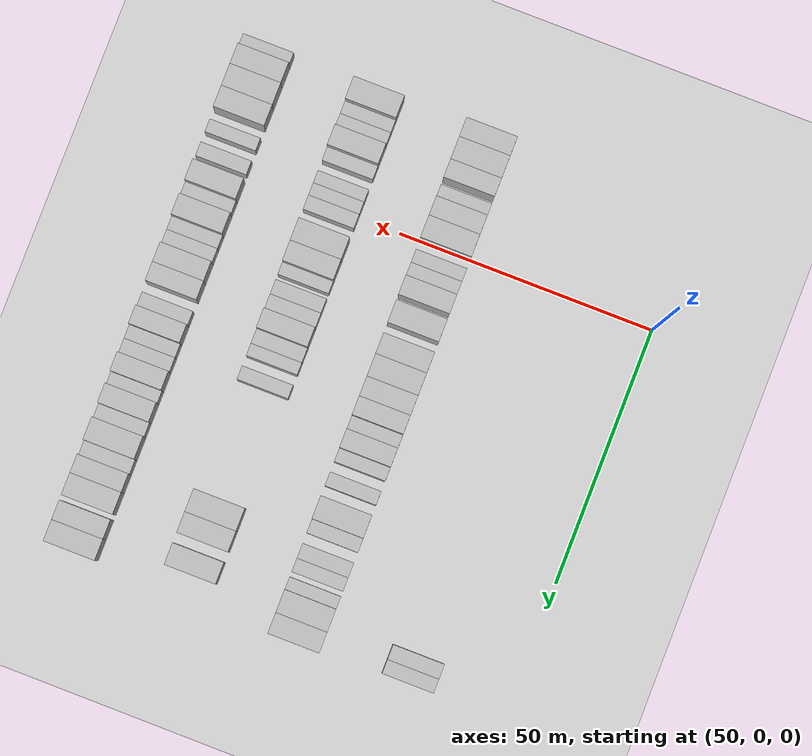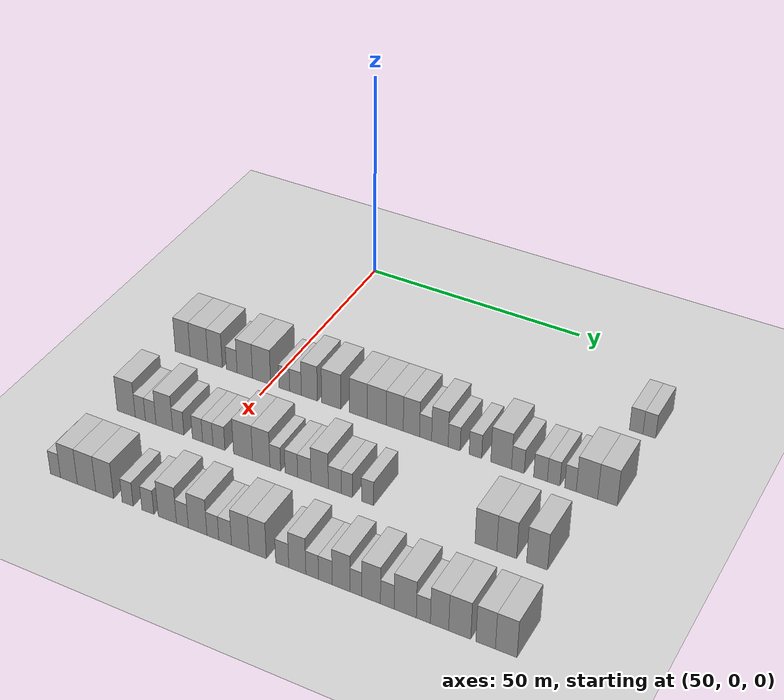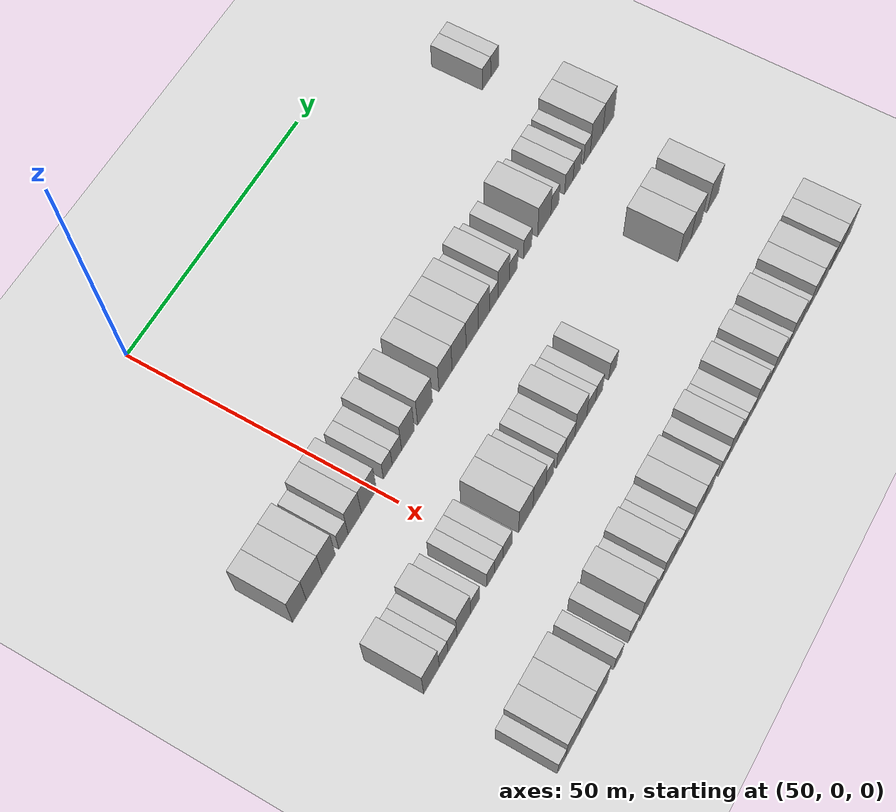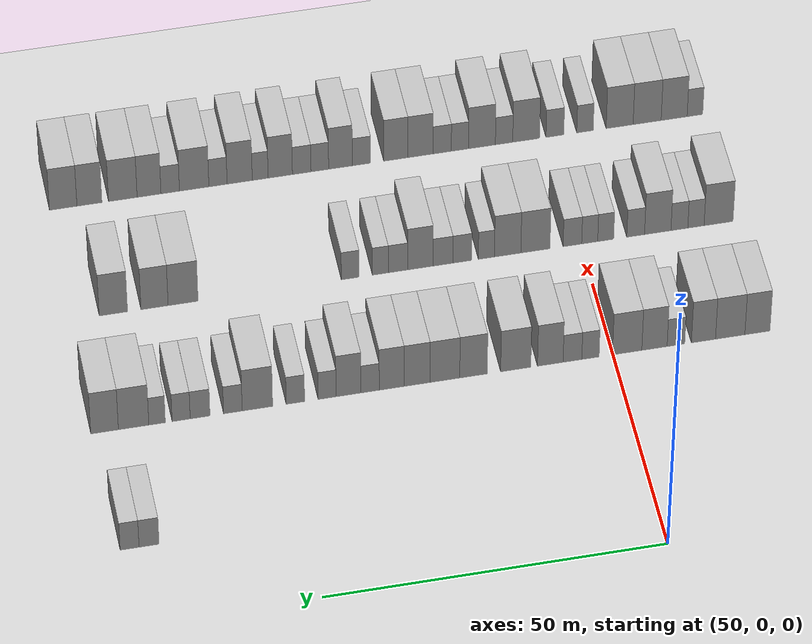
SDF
<sdf version="1.6">
 <world name="default">
  <include>
   <name>ground_plane_2</name>
   <uri>model://HANNAS_ground_plane</uri>
   <pose>100 0 0  0 0 0</pose>
  </include>
  <model name="building_495">
   <static>1</static>
   <pose>69.0000 72.4678 0 0.000000 0.000000 0.000000</pose>
   <link name="link">
    <pose>0 0 3.00 0 0 0</pose>
    <collision name="collision"><geometry><box><size>10.0000 2.8851 6.0000</size></box></geometry></collision>
    <visual name="visual">
     <cast_shadows>0</cast_shadows>
     <geometry><box><size>10.0000 2.8851 6.0000</size></box></geometry>
     <material>
      <script>
       <uri>model://HANNAS_wall/materials/scripts</uri>
       <uri>model://HANNAS_wall/materials/textures</uri>
       <name>vrc/HANNAS_wall</name>
      </script>
     </material>
    </visual>
   </link>
  </model>
  <model name="building_496">
   <static>1</static>
   <pose>69.0000 75.2731 0 0.000000 0.000000 0.000000</pose>
   <link name="link">
    <pose>0 0 3.00 0 0 0</pose>
    <collision name="collision"><geometry><box><size>10.0000 2.7254 6.0000</size></box></geometry></collision>
    <visual name="visual">
     <cast_shadows>0</cast_shadows>
     <geometry><box><size>10.0000 2.7254 6.0000</size></box></geometry>
     <material>
      <script>
       <uri>model://HANNAS_wall/materials/scripts</uri>
       <uri>model://HANNAS_wall/materials/textures</uri>
       <name>vrc/HANNAS_wall</name>
      </script>
     </material>
    </visual>
   </link>
  </model>
  <model name="building_655">
   <static>1</static>
   <pose>91.0000 -21.6300 0 0.000000 0.000000 0.000000</pose>
   <link name="link">
    <pose>0 0 4.50 0 0 0</pose>
    <collision name="collision"><geometry><box><size>10.0000 3.7675 9.0000</size></box></geometry></collision>
    <visual name="visual">
     <cast_shadows>0</cast_shadows>
     <geometry><box><size>10.0000 3.7675 9.0000</size></box></geometry>
     <material>
      <script>
       <uri>model://HANNAS_wall/materials/scripts</uri>
       <uri>model://HANNAS_wall/materials/textures</uri>
       <name>vrc/HANNAS_wall</name>
      </script>
     </material>
    </visual>
   </link>
  </model>
  <model name="building_656">
   <static>1</static>
   <pose>91.0000 -17.5398 0 0.000000 0.000000 0.000000</pose>
   <link name="link">
    <pose>0 0 4.50 0 0 0</pose>
    <collision name="collision"><geometry><box><size>10.0000 4.4128 9.0000</size></box></geometry></collision>
    <visual name="visual">
     <cast_shadows>0</cast_shadows>
     <geometry><box><size>10.0000 4.4128 9.0000</size></box></geometry>
     <material>
      <script>
       <uri>model://HANNAS_wall/materials/scripts</uri>
       <uri>model://HANNAS_wall/materials/textures</uri>
       <name>vrc/HANNAS_wall</name>
      </script>
     </material>
    </visual>
   </link>
  </model>
  <model name="building_657">
   <static>1</static>
   <pose>91.0000 -13.5246 0 0.000000 0.000000 0.000000</pose>
   <link name="link">
    <pose>0 0 4.50 0 0 0</pose>
    <collision name="collision"><geometry><box><size>10.0000 3.6177 9.0000</size></box></geometry></collision>
    <visual name="visual">
     <cast_shadows>0</cast_shadows>
     <geometry><box><size>10.0000 3.6177 9.0000</size></box></geometry>
     <material>
      <script>
       <uri>model://HANNAS_wall/materials/scripts</uri>
       <uri>model://HANNAS_wall/materials/textures</uri>
       <name>vrc/HANNAS_wall</name>
      </script>
     </material>
    </visual>
   </link>
  </model>
  <model name="building_658">
   <static>1</static>
   <pose>91.0000 -9.3937 0 0.000000 0.000000 0.000000</pose>
   <link name="link">
    <pose>0 0 3.00 0 0 0</pose>
    <collision name="collision"><geometry><box><size>10.0000 2.6440 6.0000</size></box></geometry></collision>
    <visual name="visual">
     <cast_shadows>0</cast_shadows>
     <geometry><box><size>10.0000 2.6440 6.0000</size></box></geometry>
     <material>
      <script>
       <uri>model://HANNAS_wall/materials/scripts</uri>
       <uri>model://HANNAS_wall/materials/textures</uri>
       <name>vrc/HANNAS_wall</name>
      </script>
     </material>
    </visual>
   </link>
  </model>
  <model name="building_659">
   <static>1</static>
   <pose>91.0000 -6.1773 0 0.000000 0.000000 0.000000</pose>
   <link name="link">
    <pose>0 0 4.50 0 0 0</pose>
    <collision name="collision"><geometry><box><size>10.0000 3.7889 9.0000</size></box></geometry></collision>
    <visual name="visual">
     <cast_shadows>0</cast_shadows>
     <geometry><box><size>10.0000 3.7889 9.0000</size></box></geometry>
     <material>
      <script>
       <uri>model://HANNAS_wall/materials/scripts</uri>
       <uri>model://HANNAS_wall/materials/textures</uri>
       <name>vrc/HANNAS_wall</name>
      </script>
     </material>
    </visual>
   </link>
  </model>
  <model name="building_660">
   <static>1</static>
   <pose>91.0000 -2.0858 0 0.000000 0.000000 0.000000</pose>
   <link name="link">
    <pose>0 0 4.50 0 0 0</pose>
    <collision name="collision"><geometry><box><size>10.0000 4.3941 9.0000</size></box></geometry></collision>
    <visual name="visual">
     <cast_shadows>0</cast_shadows>
     <geometry><box><size>10.0000 4.3941 9.0000</size></box></geometry>
     <material>
      <script>
       <uri>model://HANNAS_wall/materials/scripts</uri>
       <uri>model://HANNAS_wall/materials/textures</uri>
       <name>vrc/HANNAS_wall</name>
      </script>
     </material>
    </visual>
   </link>
  </model>
  <model name="building_661">
   <static>1</static>
   <pose>91.0000 3.4025 0 0.000000 0.000000 0.000000</pose>
   <link name="link">
    <pose>0 0 3.00 0 0 0</pose>
    <collision name="collision"><geometry><box><size>10.0000 2.5824 6.0000</size></box></geometry></collision>
    <visual name="visual">
     <cast_shadows>0</cast_shadows>
     <geometry><box><size>10.0000 2.5824 6.0000</size></box></geometry>
     <material>
      <script>
       <uri>model://HANNAS_wall/materials/scripts</uri>
       <uri>model://HANNAS_wall/materials/textures</uri>
       <name>vrc/HANNAS_wall</name>
      </script>
     </material>
    </visual>
   </link>
  </model>
  <model name="building_662">
   <static>1</static>
   <pose>91.0000 6.0903 0 0.000000 0.000000 0.000000</pose>
   <link name="link">
    <pose>0 0 3.00 0 0 0</pose>
    <collision name="collision"><geometry><box><size>10.0000 2.7934 6.0000</size></box></geometry></collision>
    <visual name="visual">
     <cast_shadows>0</cast_shadows>
     <geometry><box><size>10.0000 2.7934 6.0000</size></box></geometry>
     <material>
      <script>
       <uri>model://HANNAS_wall/materials/scripts</uri>
       <uri>model://HANNAS_wall/materials/textures</uri>
       <name>vrc/HANNAS_wall</name>
      </script>
     </material>
    </visual>
   </link>
  </model>
  <model name="building_663">
   <static>1</static>
   <pose>91.0000 9.3956 0 0.000000 0.000000 0.000000</pose>
   <link name="link">
    <pose>0 0 4.50 0 0 0</pose>
    <collision name="collision"><geometry><box><size>10.0000 3.8172 9.0000</size></box></geometry></collision>
    <visual name="visual">
     <cast_shadows>0</cast_shadows>
     <geometry><box><size>10.0000 3.8172 9.0000</size></box></geometry>
     <material>
      <script>
       <uri>model://HANNAS_wall/materials/scripts</uri>
       <uri>model://HANNAS_wall/materials/textures</uri>
       <name>vrc/HANNAS_wall</name>
      </script>
     </material>
    </visual>
   </link>
  </model>
  <model name="building_664">
   <static>1</static>
   <pose>91.0000 14.5474 0 0.000000 0.000000 0.000000</pose>
   <link name="link">
    <pose>0 0 4.50 0 0 0</pose>
    <collision name="collision"><geometry><box><size>10.0000 4.4864 9.0000</size></box></geometry></collision>
    <visual name="visual">
     <cast_shadows>0</cast_shadows>
     <geometry><box><size>10.0000 4.4864 9.0000</size></box></geometry>
     <material>
      <script>
       <uri>model://HANNAS_wall/materials/scripts</uri>
       <uri>model://HANNAS_wall/materials/textures</uri>
       <name>vrc/HANNAS_wall</name>
      </script>
     </material>
    </visual>
   </link>
  </model>
  <model name="building_665">
   <static>1</static>
   <pose>91.0000 20.8331 0 0.000000 0.000000 0.000000</pose>
   <link name="link">
    <pose>0 0 4.50 0 0 0</pose>
    <collision name="collision"><geometry><box><size>10.0000 4.0851 9.0000</size></box></geometry></collision>
    <visual name="visual">
     <cast_shadows>0</cast_shadows>
     <geometry><box><size>10.0000 4.0851 9.0000</size></box></geometry>
     <material>
      <script>
       <uri>model://HANNAS_wall/materials/scripts</uri>
       <uri>model://HANNAS_wall/materials/textures</uri>
       <name>vrc/HANNAS_wall</name>
      </script>
     </material>
    </visual>
   </link>
  </model>
  <model name="building_666">
   <static>1</static>
   <pose>91.0000 25.0756 0 0.000000 0.000000 0.000000</pose>
   <link name="link">
    <pose>0 0 4.50 0 0 0</pose>
    <collision name="collision"><geometry><box><size>10.0000 4.3998 9.0000</size></box></geometry></collision>
    <visual name="visual">
     <cast_shadows>0</cast_shadows>
     <geometry><box><size>10.0000 4.3998 9.0000</size></box></geometry>
     <material>
      <script>
       <uri>model://HANNAS_wall/materials/scripts</uri>
       <uri>model://HANNAS_wall/materials/textures</uri>
       <name>vrc/HANNAS_wall</name>
      </script>
     </material>
    </visual>
   </link>
  </model>
  <model name="building_667">
   <static>1</static>
   <pose>91.0000 29.2044 0 0.000000 0.000000 0.000000</pose>
   <link name="link">
    <pose>0 0 4.50 0 0 0</pose>
    <collision name="collision"><geometry><box><size>10.0000 3.8577 9.0000</size></box></geometry></collision>
    <visual name="visual">
     <cast_shadows>0</cast_shadows>
     <geometry><box><size>10.0000 3.8577 9.0000</size></box></geometry>
     <material>
      <script>
       <uri>model://HANNAS_wall/materials/scripts</uri>
       <uri>model://HANNAS_wall/materials/textures</uri>
       <name>vrc/HANNAS_wall</name>
      </script>
     </material>
    </visual>
   </link>
  </model>
  <model name="building_668">
   <static>1</static>
   <pose>91.0000 32.9748 0 0.000000 0.000000 0.000000</pose>
   <link name="link">
    <pose>0 0 4.50 0 0 0</pose>
    <collision name="collision"><geometry><box><size>10.0000 3.6832 9.0000</size></box></geometry></collision>
    <visual name="visual">
     <cast_shadows>0</cast_shadows>
     <geometry><box><size>10.0000 3.6832 9.0000</size></box></geometry>
     <material>
      <script>
       <uri>model://HANNAS_wall/materials/scripts</uri>
       <uri>model://HANNAS_wall/materials/textures</uri>
       <name>vrc/HANNAS_wall</name>
      </script>
     </material>
    </visual>
   </link>
  </model>
  <model name="building_669">
   <static>1</static>
   <pose>91.0000 36.1681 0 0.000000 0.000000 0.000000</pose>
   <link name="link">
    <pose>0 0 3.00 0 0 0</pose>
    <collision name="collision"><geometry><box><size>10.0000 2.7033 6.0000</size></box></geometry></collision>
    <visual name="visual">
     <cast_shadows>0</cast_shadows>
     <geometry><box><size>10.0000 2.7033 6.0000</size></box></geometry>
     <material>
      <script>
       <uri>model://HANNAS_wall/materials/scripts</uri>
       <uri>model://HANNAS_wall/materials/textures</uri>
       <name>vrc/HANNAS_wall</name>
      </script>
     </material>
    </visual>
   </link>
  </model>
  <model name="building_670">
   <static>1</static>
   <pose>91.0000 39.3587 0 0.000000 0.000000 0.000000</pose>
   <link name="link">
    <pose>0 0 4.50 0 0 0</pose>
    <collision name="collision"><geometry><box><size>10.0000 3.6779 9.0000</size></box></geometry></collision>
    <visual name="visual">
     <cast_shadows>0</cast_shadows>
     <geometry><box><size>10.0000 3.6779 9.0000</size></box></geometry>
     <material>
      <script>
       <uri>model://HANNAS_wall/materials/scripts</uri>
       <uri>model://HANNAS_wall/materials/textures</uri>
       <name>vrc/HANNAS_wall</name>
      </script>
     </material>
    </visual>
   </link>
  </model>
  <model name="building_671">
   <static>1</static>
   <pose>91.0000 42.5216 0 0.000000 0.000000 0.000000</pose>
   <link name="link">
    <pose>0 0 3.00 0 0 0</pose>
    <collision name="collision"><geometry><box><size>10.0000 2.6479 6.0000</size></box></geometry></collision>
    <visual name="visual">
     <cast_shadows>0</cast_shadows>
     <geometry><box><size>10.0000 2.6479 6.0000</size></box></geometry>
     <material>
      <script>
       <uri>model://HANNAS_wall/materials/scripts</uri>
       <uri>model://HANNAS_wall/materials/textures</uri>
       <name>vrc/HANNAS_wall</name>
      </script>
     </material>
    </visual>
   </link>
  </model>
  <model name="building_672">
   <static>1</static>
   <pose>91.0000 47.2040 0 0.000000 0.000000 0.000000</pose>
   <link name="link">
    <pose>0 0 3.00 0 0 0</pose>
    <collision name="collision"><geometry><box><size>10.0000 2.7167 6.0000</size></box></geometry></collision>
    <visual name="visual">
     <cast_shadows>0</cast_shadows>
     <geometry><box><size>10.0000 2.7167 6.0000</size></box></geometry>
     <material>
      <script>
       <uri>model://HANNAS_wall/materials/scripts</uri>
       <uri>model://HANNAS_wall/materials/textures</uri>
       <name>vrc/HANNAS_wall</name>
      </script>
     </material>
    </visual>
   </link>
  </model>
  <model name="building_673">
   <static>1</static>
   <pose>91.0000 52.8042 0 0.000000 0.000000 0.000000</pose>
   <link name="link">
    <pose>0 0 4.50 0 0 0</pose>
    <collision name="collision"><geometry><box><size>10.0000 4.4837 9.0000</size></box></geometry></collision>
    <visual name="visual">
     <cast_shadows>0</cast_shadows>
     <geometry><box><size>10.0000 4.4837 9.0000</size></box></geometry>
     <material>
      <script>
       <uri>model://HANNAS_wall/materials/scripts</uri>
       <uri>model://HANNAS_wall/materials/textures</uri>
       <name>vrc/HANNAS_wall</name>
      </script>
     </material>
    </visual>
   </link>
  </model>
  <model name="building_674">
   <static>1</static>
   <pose>91.0000 56.4148 0 0.000000 0.000000 0.000000</pose>
   <link name="link">
    <pose>0 0 3.00 0 0 0</pose>
    <collision name="collision"><geometry><box><size>10.0000 2.7376 6.0000</size></box></geometry></collision>
    <visual name="visual">
     <cast_shadows>0</cast_shadows>
     <geometry><box><size>10.0000 2.7376 6.0000</size></box></geometry>
     <material>
      <script>
       <uri>model://HANNAS_wall/materials/scripts</uri>
       <uri>model://HANNAS_wall/materials/textures</uri>
       <name>vrc/HANNAS_wall</name>
      </script>
     </material>
    </visual>
   </link>
  </model>
  <model name="building_675">
   <static>1</static>
   <pose>91.0000 61.2368 0 0.000000 0.000000 0.000000</pose>
   <link name="link">
    <pose>0 0 3.00 0 0 0</pose>
    <collision name="collision"><geometry><box><size>10.0000 2.9064 6.0000</size></box></geometry></collision>
    <visual name="visual">
     <cast_shadows>0</cast_shadows>
     <geometry><box><size>10.0000 2.9064 6.0000</size></box></geometry>
     <material>
      <script>
       <uri>model://HANNAS_wall/materials/scripts</uri>
       <uri>model://HANNAS_wall/materials/textures</uri>
       <name>vrc/HANNAS_wall</name>
      </script>
     </material>
    </visual>
   </link>
  </model>
  <model name="building_676">
   <static>1</static>
   <pose>91.0000 64.0152 0 0.000000 0.000000 0.000000</pose>
   <link name="link">
    <pose>0 0 3.00 0 0 0</pose>
    <collision name="collision"><geometry><box><size>10.0000 2.6502 6.0000</size></box></geometry></collision>
    <visual name="visual">
     <cast_shadows>0</cast_shadows>
     <geometry><box><size>10.0000 2.6502 6.0000</size></box></geometry>
     <material>
      <script>
       <uri>model://HANNAS_wall/materials/scripts</uri>
       <uri>model://HANNAS_wall/materials/textures</uri>
       <name>vrc/HANNAS_wall</name>
      </script>
     </material>
    </visual>
   </link>
  </model>
  <model name="building_677">
   <static>1</static>
   <pose>91.0000 67.5487 0 0.000000 0.000000 0.000000</pose>
   <link name="link">
    <pose>0 0 3.00 0 0 0</pose>
    <collision name="collision"><geometry><box><size>10.0000 2.4168 6.0000</size></box></geometry></collision>
    <visual name="visual">
     <cast_shadows>0</cast_shadows>
     <geometry><box><size>10.0000 2.4168 6.0000</size></box></geometry>
     <material>
      <script>
       <uri>model://HANNAS_wall/materials/scripts</uri>
       <uri>model://HANNAS_wall/materials/textures</uri>
       <name>vrc/HANNAS_wall</name>
      </script>
     </material>
    </visual>
   </link>
  </model>
  <model name="building_678">
   <static>1</static>
   <pose>91.0000 70.9877 0 0.000000 0.000000 0.000000</pose>
   <link name="link">
    <pose>0 0 4.50 0 0 0</pose>
    <collision name="collision"><geometry><box><size>10.0000 4.4612 9.0000</size></box></geometry></collision>
    <visual name="visual">
     <cast_shadows>0</cast_shadows>
     <geometry><box><size>10.0000 4.4612 9.0000</size></box></geometry>
     <material>
      <script>
       <uri>model://HANNAS_wall/materials/scripts</uri>
       <uri>model://HANNAS_wall/materials/textures</uri>
       <name>vrc/HANNAS_wall</name>
      </script>
     </material>
    </visual>
   </link>
  </model>
  <model name="building_679">
   <static>1</static>
   <pose>91.0000 75.2399 0 0.000000 0.000000 0.000000</pose>
   <link name="link">
    <pose>0 0 4.50 0 0 0</pose>
    <collision name="collision"><geometry><box><size>10.0000 4.0432 9.0000</size></box></geometry></collision>
    <visual name="visual">
     <cast_shadows>0</cast_shadows>
     <geometry><box><size>10.0000 4.0432 9.0000</size></box></geometry>
     <material>
      <script>
       <uri>model://HANNAS_wall/materials/scripts</uri>
       <uri>model://HANNAS_wall/materials/textures</uri>
       <name>vrc/HANNAS_wall</name>
      </script>
     </material>
    </visual>
   </link>
  </model>
  <model name="building_834">
   <static>1</static>
   <pose>113.0000 -20.9519 0 0.000000 0.000000 0.000000</pose>
   <link name="link">
    <pose>0 0 4.50 0 0 0</pose>
    <collision name="collision"><geometry><box><size>10.0000 4.4131 9.0000</size></box></geometry></collision>
    <visual name="visual">
     <cast_shadows>0</cast_shadows>
     <geometry><box><size>10.0000 4.4131 9.0000</size></box></geometry>
     <material>
      <script>
       <uri>model://HANNAS_wall/materials/scripts</uri>
       <uri>model://HANNAS_wall/materials/textures</uri>
       <name>vrc/HANNAS_wall</name>
      </script>
     </material>
    </visual>
   </link>
  </model>
  <model name="building_835">
   <static>1</static>
   <pose>113.0000 -17.5032 0 0.000000 0.000000 0.000000</pose>
   <link name="link">
    <pose>0 0 3.00 0 0 0</pose>
    <collision name="collision"><geometry><box><size>10.0000 2.4842 6.0000</size></box></geometry></collision>
    <visual name="visual">
     <cast_shadows>0</cast_shadows>
     <geometry><box><size>10.0000 2.4842 6.0000</size></box></geometry>
     <material>
      <script>
       <uri>model://HANNAS_wall/materials/scripts</uri>
       <uri>model://HANNAS_wall/materials/textures</uri>
       <name>vrc/HANNAS_wall</name>
      </script>
     </material>
    </visual>
   </link>
  </model>
  <model name="building_836">
   <static>1</static>
   <pose>113.0000 -14.9747 0 0.000000 0.000000 0.000000</pose>
   <link name="link">
    <pose>0 0 3.00 0 0 0</pose>
    <collision name="collision"><geometry><box><size>10.0000 2.5727 6.0000</size></box></geometry></collision>
    <visual name="visual">
     <cast_shadows>0</cast_shadows>
     <geometry><box><size>10.0000 2.5727 6.0000</size></box></geometry>
     <material>
      <script>
       <uri>model://HANNAS_wall/materials/scripts</uri>
       <uri>model://HANNAS_wall/materials/textures</uri>
       <name>vrc/HANNAS_wall</name>
      </script>
     </material>
    </visual>
   </link>
  </model>
  <model name="building_837">
   <static>1</static>
   <pose>113.0000 -11.6772 0 0.000000 0.000000 0.000000</pose>
   <link name="link">
    <pose>0 0 4.50 0 0 0</pose>
    <collision name="collision"><geometry><box><size>10.0000 4.0223 9.0000</size></box></geometry></collision>
    <visual name="visual">
     <cast_shadows>0</cast_shadows>
     <geometry><box><size>10.0000 4.0223 9.0000</size></box></geometry>
     <material>
      <script>
       <uri>model://HANNAS_wall/materials/scripts</uri>
       <uri>model://HANNAS_wall/materials/textures</uri>
       <name>vrc/HANNAS_wall</name>
      </script>
     </material>
    </visual>
   </link>
  </model>
  <model name="building_838">
   <static>1</static>
   <pose>113.0000 -8.3150 0 0.000000 0.000000 0.000000</pose>
   <link name="link">
    <pose>0 0 3.00 0 0 0</pose>
    <collision name="collision"><geometry><box><size>10.0000 2.7021 6.0000</size></box></geometry></collision>
    <visual name="visual">
     <cast_shadows>0</cast_shadows>
     <geometry><box><size>10.0000 2.7021 6.0000</size></box></geometry>
     <material>
      <script>
       <uri>model://HANNAS_wall/materials/scripts</uri>
       <uri>model://HANNAS_wall/materials/textures</uri>
       <name>vrc/HANNAS_wall</name>
      </script>
     </material>
    </visual>
   </link>
  </model>
  <model name="building_839">
   <static>1</static>
   <pose>113.0000 -3.7525 0 0.000000 0.000000 0.000000</pose>
   <link name="link">
    <pose>0 0 3.00 0 0 0</pose>
    <collision name="collision"><geometry><box><size>10.0000 2.4230 6.0000</size></box></geometry></collision>
    <visual name="visual">
     <cast_shadows>0</cast_shadows>
     <geometry><box><size>10.0000 2.4230 6.0000</size></box></geometry>
     <material>
      <script>
       <uri>model://HANNAS_wall/materials/scripts</uri>
       <uri>model://HANNAS_wall/materials/textures</uri>
       <name>vrc/HANNAS_wall</name>
      </script>
     </material>
    </visual>
   </link>
  </model>
  <model name="building_840">
   <static>1</static>
   <pose>113.0000 -1.3225 0 0.000000 0.000000 0.000000</pose>
   <link name="link">
    <pose>0 0 3.00 0 0 0</pose>
    <collision name="collision"><geometry><box><size>10.0000 2.4370 6.0000</size></box></geometry></collision>
    <visual name="visual">
     <cast_shadows>0</cast_shadows>
     <geometry><box><size>10.0000 2.4370 6.0000</size></box></geometry>
     <material>
      <script>
       <uri>model://HANNAS_wall/materials/scripts</uri>
       <uri>model://HANNAS_wall/materials/textures</uri>
       <name>vrc/HANNAS_wall</name>
      </script>
     </material>
    </visual>
   </link>
  </model>
  <model name="building_841">
   <static>1</static>
   <pose>113.0000 1.3039 0 0.000000 0.000000 0.000000</pose>
   <link name="link">
    <pose>0 0 3.00 0 0 0</pose>
    <collision name="collision"><geometry><box><size>10.0000 2.8157 6.0000</size></box></geometry></collision>
    <visual name="visual">
     <cast_shadows>0</cast_shadows>
     <geometry><box><size>10.0000 2.8157 6.0000</size></box></geometry>
     <material>
      <script>
       <uri>model://HANNAS_wall/materials/scripts</uri>
       <uri>model://HANNAS_wall/materials/textures</uri>
       <name>vrc/HANNAS_wall</name>
      </script>
     </material>
    </visual>
   </link>
  </model>
  <model name="building_842">
   <static>1</static>
   <pose>113.0000 6.9179 0 0.000000 0.000000 0.000000</pose>
   <link name="link">
    <pose>0 0 4.50 0 0 0</pose>
    <collision name="collision"><geometry><box><size>10.0000 4.4123 9.0000</size></box></geometry></collision>
    <visual name="visual">
     <cast_shadows>0</cast_shadows>
     <geometry><box><size>10.0000 4.4123 9.0000</size></box></geometry>
     <material>
      <script>
       <uri>model://HANNAS_wall/materials/scripts</uri>
       <uri>model://HANNAS_wall/materials/textures</uri>
       <name>vrc/HANNAS_wall</name>
      </script>
     </material>
    </visual>
   </link>
  </model>
  <model name="building_843">
   <static>1</static>
   <pose>113.0000 11.1232 0 0.000000 0.000000 0.000000</pose>
   <link name="link">
    <pose>0 0 4.50 0 0 0</pose>
    <collision name="collision"><geometry><box><size>10.0000 3.9982 9.0000</size></box></geometry></collision>
    <visual name="visual">
     <cast_shadows>0</cast_shadows>
     <geometry><box><size>10.0000 3.9982 9.0000</size></box></geometry>
     <material>
      <script>
       <uri>model://HANNAS_wall/materials/scripts</uri>
       <uri>model://HANNAS_wall/materials/textures</uri>
       <name>vrc/HANNAS_wall</name>
      </script>
     </material>
    </visual>
   </link>
  </model>
  <model name="building_844">
   <static>1</static>
   <pose>113.0000 14.3374 0 0.000000 0.000000 0.000000</pose>
   <link name="link">
    <pose>0 0 3.00 0 0 0</pose>
    <collision name="collision"><geometry><box><size>10.0000 2.4303 6.0000</size></box></geometry></collision>
    <visual name="visual">
     <cast_shadows>0</cast_shadows>
     <geometry><box><size>10.0000 2.4303 6.0000</size></box></geometry>
     <material>
      <script>
       <uri>model://HANNAS_wall/materials/scripts</uri>
       <uri>model://HANNAS_wall/materials/textures</uri>
       <name>vrc/HANNAS_wall</name>
      </script>
     </material>
    </visual>
   </link>
  </model>
  <model name="building_845">
   <static>1</static>
   <pose>113.0000 17.9736 0 0.000000 0.000000 0.000000</pose>
   <link name="link">
    <pose>0 0 3.00 0 0 0</pose>
    <collision name="collision"><geometry><box><size>10.0000 2.8421 6.0000</size></box></geometry></collision>
    <visual name="visual">
     <cast_shadows>0</cast_shadows>
     <geometry><box><size>10.0000 2.8421 6.0000</size></box></geometry>
     <material>
      <script>
       <uri>model://HANNAS_wall/materials/scripts</uri>
       <uri>model://HANNAS_wall/materials/textures</uri>
       <name>vrc/HANNAS_wall</name>
      </script>
     </material>
    </visual>
   </link>
  </model>
  <model name="building_846">
   <static>1</static>
   <pose>113.0000 20.8875 0 0.000000 0.000000 0.000000</pose>
   <link name="link">
    <pose>0 0 3.00 0 0 0</pose>
    <collision name="collision"><geometry><box><size>10.0000 2.9858 6.0000</size></box></geometry></collision>
    <visual name="visual">
     <cast_shadows>0</cast_shadows>
     <geometry><box><size>10.0000 2.9858 6.0000</size></box></geometry>
     <material>
      <script>
       <uri>model://HANNAS_wall/materials/scripts</uri>
       <uri>model://HANNAS_wall/materials/textures</uri>
       <name>vrc/HANNAS_wall</name>
      </script>
     </material>
    </visual>
   </link>
  </model>
  <model name="building_847">
   <static>1</static>
   <pose>113.0000 24.3116 0 0.000000 0.000000 0.000000</pose>
   <link name="link">
    <pose>0 0 4.50 0 0 0</pose>
    <collision name="collision"><geometry><box><size>10.0000 3.8624 9.0000</size></box></geometry></collision>
    <visual name="visual">
     <cast_shadows>0</cast_shadows>
     <geometry><box><size>10.0000 3.8624 9.0000</size></box></geometry>
     <material>
      <script>
       <uri>model://HANNAS_wall/materials/scripts</uri>
       <uri>model://HANNAS_wall/materials/textures</uri>
       <name>vrc/HANNAS_wall</name>
      </script>
     </material>
    </visual>
   </link>
  </model>
  <model name="building_848">
   <static>1</static>
   <pose>113.0000 27.6863 0 0.000000 0.000000 0.000000</pose>
   <link name="link">
    <pose>0 0 3.00 0 0 0</pose>
    <collision name="collision"><geometry><box><size>10.0000 2.8870 6.0000</size></box></geometry></collision>
    <visual name="visual">
     <cast_shadows>0</cast_shadows>
     <geometry><box><size>10.0000 2.8870 6.0000</size></box></geometry>
     <material>
      <script>
       <uri>model://HANNAS_wall/materials/scripts</uri>
       <uri>model://HANNAS_wall/materials/textures</uri>
       <name>vrc/HANNAS_wall</name>
      </script>
     </material>
    </visual>
   </link>
  </model>
  <model name="building_849">
   <static>1</static>
   <pose>113.0000 30.3327 0 0.000000 0.000000 0.000000</pose>
   <link name="link">
    <pose>0 0 3.00 0 0 0</pose>
    <collision name="collision"><geometry><box><size>10.0000 2.4058 6.0000</size></box></geometry></collision>
    <visual name="visual">
     <cast_shadows>0</cast_shadows>
     <geometry><box><size>10.0000 2.4058 6.0000</size></box></geometry>
     <material>
      <script>
       <uri>model://HANNAS_wall/materials/scripts</uri>
       <uri>model://HANNAS_wall/materials/textures</uri>
       <name>vrc/HANNAS_wall</name>
      </script>
     </material>
    </visual>
   </link>
  </model>
  <model name="building_850">
   <static>1</static>
   <pose>113.0000 34.8698 0 0.000000 0.000000 0.000000</pose>
   <link name="link">
    <pose>0 0 3.00 0 0 0</pose>
    <collision name="collision"><geometry><box><size>10.0000 2.6684 6.0000</size></box></geometry></collision>
    <visual name="visual">
     <cast_shadows>0</cast_shadows>
     <geometry><box><size>10.0000 2.6684 6.0000</size></box></geometry>
     <material>
      <script>
       <uri>model://HANNAS_wall/materials/scripts</uri>
       <uri>model://HANNAS_wall/materials/textures</uri>
       <name>vrc/HANNAS_wall</name>
      </script>
     </material>
    </visual>
   </link>
  </model>
  <model name="building_851">
   <static>1</static>
   <pose>113.0000 59.9055 0 0.000000 0.000000 0.000000</pose>
   <link name="link">
    <pose>0 0 4.50 0 0 0</pose>
    <collision name="collision"><geometry><box><size>10.0000 4.4677 9.0000</size></box></geometry></collision>
    <visual name="visual">
     <cast_shadows>0</cast_shadows>
     <geometry><box><size>10.0000 4.4677 9.0000</size></box></geometry>
     <material>
      <script>
       <uri>model://HANNAS_wall/materials/scripts</uri>
       <uri>model://HANNAS_wall/materials/textures</uri>
       <name>vrc/HANNAS_wall</name>
      </script>
     </material>
    </visual>
   </link>
  </model>
  <model name="building_852">
   <static>1</static>
   <pose>113.0000 64.1645 0 0.000000 0.000000 0.000000</pose>
   <link name="link">
    <pose>0 0 4.50 0 0 0</pose>
    <collision name="collision"><geometry><box><size>10.0000 4.0501 9.0000</size></box></geometry></collision>
    <visual name="visual">
     <cast_shadows>0</cast_shadows>
     <geometry><box><size>10.0000 4.0501 9.0000</size></box></geometry>
     <material>
      <script>
       <uri>model://HANNAS_wall/materials/scripts</uri>
       <uri>model://HANNAS_wall/materials/textures</uri>
       <name>vrc/HANNAS_wall</name>
      </script>
     </material>
    </visual>
   </link>
  </model>
  <model name="building_853">
   <static>1</static>
   <pose>113.0000 70.2979 0 0.000000 0.000000 0.000000</pose>
   <link name="link">
    <pose>0 0 4.50 0 0 0</pose>
    <collision name="collision"><geometry><box><size>10.0000 4.2167 9.0000</size></box></geometry></collision>
    <visual name="visual">
     <cast_shadows>0</cast_shadows>
     <geometry><box><size>10.0000 4.2167 9.0000</size></box></geometry>
     <material>
      <script>
       <uri>model://HANNAS_wall/materials/scripts</uri>
       <uri>model://HANNAS_wall/materials/textures</uri>
       <name>vrc/HANNAS_wall</name>
      </script>
     </material>
    </visual>
   </link>
  </model>
  <model name="building_1013">
   <static>1</static>
   <pose>135.0000 -22.4498 0 0.000000 0.000000 0.000000</pose>
   <link name="link">
    <pose>0 0 3.00 0 0 0</pose>
    <collision name="collision"><geometry><box><size>10.0000 2.4157 6.0000</size></box></geometry></collision>
    <visual name="visual">
     <cast_shadows>0</cast_shadows>
     <geometry><box><size>10.0000 2.4157 6.0000</size></box></geometry>
     <material>
      <script>
       <uri>model://HANNAS_wall/materials/scripts</uri>
       <uri>model://HANNAS_wall/materials/textures</uri>
       <name>vrc/HANNAS_wall</name>
      </script>
     </material>
    </visual>
   </link>
  </model>
  <model name="building_1014">
   <static>1</static>
   <pose>135.0000 -19.2277 0 0.000000 0.000000 0.000000</pose>
   <link name="link">
    <pose>0 0 4.50 0 0 0</pose>
    <collision name="collision"><geometry><box><size>10.0000 4.0285 9.0000</size></box></geometry></collision>
    <visual name="visual">
     <cast_shadows>0</cast_shadows>
     <geometry><box><size>10.0000 4.0285 9.0000</size></box></geometry>
     <material>
      <script>
       <uri>model://HANNAS_wall/materials/scripts</uri>
       <uri>model://HANNAS_wall/materials/textures</uri>
       <name>vrc/HANNAS_wall</name>
      </script>
     </material>
    </visual>
   </link>
  </model>
  <model name="building_1015">
   <static>1</static>
   <pose>135.0000 -15.0442 0 0.000000 0.000000 0.000000</pose>
   <link name="link">
    <pose>0 0 4.50 0 0 0</pose>
    <collision name="collision"><geometry><box><size>10.0000 4.3385 9.0000</size></box></geometry></collision>
    <visual name="visual">
     <cast_shadows>0</cast_shadows>
     <geometry><box><size>10.0000 4.3385 9.0000</size></box></geometry>
     <material>
      <script>
       <uri>model://HANNAS_wall/materials/scripts</uri>
       <uri>model://HANNAS_wall/materials/textures</uri>
       <name>vrc/HANNAS_wall</name>
      </script>
     </material>
    </visual>
   </link>
  </model>
  <model name="building_1016">
   <static>1</static>
   <pose>135.0000 -10.7887 0 0.000000 0.000000 0.000000</pose>
   <link name="link">
    <pose>0 0 4.50 0 0 0</pose>
    <collision name="collision"><geometry><box><size>10.0000 4.1727 9.0000</size></box></geometry></collision>
    <visual name="visual">
     <cast_shadows>0</cast_shadows>
     <geometry><box><size>10.0000 4.1727 9.0000</size></box></geometry>
     <material>
      <script>
       <uri>model://HANNAS_wall/materials/scripts</uri>
       <uri>model://HANNAS_wall/materials/textures</uri>
       <name>vrc/HANNAS_wall</name>
      </script>
     </material>
    </visual>
   </link>
  </model>
  <model name="building_1017">
   <static>1</static>
   <pose>135.0000 -5.4329 0 0.000000 0.000000 0.000000</pose>
   <link name="link">
    <pose>0 0 3.00 0 0 0</pose>
    <collision name="collision"><geometry><box><size>10.0000 2.5389 6.0000</size></box></geometry></collision>
    <visual name="visual">
     <cast_shadows>0</cast_shadows>
     <geometry><box><size>10.0000 2.5389 6.0000</size></box></geometry>
     <material>
      <script>
       <uri>model://HANNAS_wall/materials/scripts</uri>
       <uri>model://HANNAS_wall/materials/textures</uri>
       <name>vrc/HANNAS_wall</name>
      </script>
     </material>
    </visual>
   </link>
  </model>
  <model name="building_1018">
   <static>1</static>
   <pose>135.0000 -0.7918 0 0.000000 0.000000 0.000000</pose>
   <link name="link">
    <pose>0 0 3.00 0 0 0</pose>
    <collision name="collision"><geometry><box><size>10.0000 2.7433 6.0000</size></box></geometry></collision>
    <visual name="visual">
     <cast_shadows>0</cast_shadows>
     <geometry><box><size>10.0000 2.7433 6.0000</size></box></geometry>
     <material>
      <script>
       <uri>model://HANNAS_wall/materials/scripts</uri>
       <uri>model://HANNAS_wall/materials/textures</uri>
       <name>vrc/HANNAS_wall</name>
      </script>
     </material>
    </visual>
   </link>
  </model>
  <model name="building_1019">
   <static>1</static>
   <pose>135.0000 3.6431 0 0.000000 0.000000 0.000000</pose>
   <link name="link">
    <pose>0 0 4.50 0 0 0</pose>
    <collision name="collision"><geometry><box><size>10.0000 4.1266 9.0000</size></box></geometry></collision>
    <visual name="visual">
     <cast_shadows>0</cast_shadows>
     <geometry><box><size>10.0000 4.1266 9.0000</size></box></geometry>
     <material>
      <script>
       <uri>model://HANNAS_wall/materials/scripts</uri>
       <uri>model://HANNAS_wall/materials/textures</uri>
       <name>vrc/HANNAS_wall</name>
      </script>
     </material>
    </visual>
   </link>
  </model>
  <model name="building_1020">
   <static>1</static>
   <pose>135.0000 7.0402 0 0.000000 0.000000 0.000000</pose>
   <link name="link">
    <pose>0 0 3.00 0 0 0</pose>
    <collision name="collision"><geometry><box><size>10.0000 2.6676 6.0000</size></box></geometry></collision>
    <visual name="visual">
     <cast_shadows>0</cast_shadows>
     <geometry><box><size>10.0000 2.6676 6.0000</size></box></geometry>
     <material>
      <script>
       <uri>model://HANNAS_wall/materials/scripts</uri>
       <uri>model://HANNAS_wall/materials/textures</uri>
       <name>vrc/HANNAS_wall</name>
      </script>
     </material>
    </visual>
   </link>
  </model>
  <model name="building_1021">
   <static>1</static>
   <pose>135.0000 10.4442 0 0.000000 0.000000 0.000000</pose>
   <link name="link">
    <pose>0 0 4.50 0 0 0</pose>
    <collision name="collision"><geometry><box><size>10.0000 4.1403 9.0000</size></box></geometry></collision>
    <visual name="visual">
     <cast_shadows>0</cast_shadows>
     <geometry><box><size>10.0000 4.1403 9.0000</size></box></geometry>
     <material>
      <script>
       <uri>model://HANNAS_wall/materials/scripts</uri>
       <uri>model://HANNAS_wall/materials/textures</uri>
       <name>vrc/HANNAS_wall</name>
      </script>
     </material>
    </visual>
   </link>
  </model>
  <model name="building_1022">
   <static>1</static>
   <pose>135.0000 13.8285 0 0.000000 0.000000 0.000000</pose>
   <link name="link">
    <pose>0 0 3.00 0 0 0</pose>
    <collision name="collision"><geometry><box><size>10.0000 2.6285 6.0000</size></box></geometry></collision>
    <visual name="visual">
     <cast_shadows>0</cast_shadows>
     <geometry><box><size>10.0000 2.6285 6.0000</size></box></geometry>
     <material>
      <script>
       <uri>model://HANNAS_wall/materials/scripts</uri>
       <uri>model://HANNAS_wall/materials/textures</uri>
       <name>vrc/HANNAS_wall</name>
      </script>
     </material>
    </visual>
   </link>
  </model>
  <model name="building_1023">
   <static>1</static>
   <pose>135.0000 16.5427 0 0.000000 0.000000 0.000000</pose>
   <link name="link">
    <pose>0 0 3.00 0 0 0</pose>
    <collision name="collision"><geometry><box><size>10.0000 2.7999 6.0000</size></box></geometry></collision>
    <visual name="visual">
     <cast_shadows>0</cast_shadows>
     <geometry><box><size>10.0000 2.7999 6.0000</size></box></geometry>
     <material>
      <script>
       <uri>model://HANNAS_wall/materials/scripts</uri>
       <uri>model://HANNAS_wall/materials/textures</uri>
       <name>vrc/HANNAS_wall</name>
      </script>
     </material>
    </visual>
   </link>
  </model>
  <model name="building_1024">
   <static>1</static>
   <pose>135.0000 19.8768 0 0.000000 0.000000 0.000000</pose>
   <link name="link">
    <pose>0 0 4.50 0 0 0</pose>
    <collision name="collision"><geometry><box><size>10.0000 3.8684 9.0000</size></box></geometry></collision>
    <visual name="visual">
     <cast_shadows>0</cast_shadows>
     <geometry><box><size>10.0000 3.8684 9.0000</size></box></geometry>
     <material>
      <script>
       <uri>model://HANNAS_wall/materials/scripts</uri>
       <uri>model://HANNAS_wall/materials/textures</uri>
       <name>vrc/HANNAS_wall</name>
      </script>
     </material>
    </visual>
   </link>
  </model>
  <model name="building_1025">
   <static>1</static>
   <pose>135.0000 23.6592 0 0.000000 0.000000 0.000000</pose>
   <link name="link">
    <pose>0 0 4.50 0 0 0</pose>
    <collision name="collision"><geometry><box><size>10.0000 3.6964 9.0000</size></box></geometry></collision>
    <visual name="visual">
     <cast_shadows>0</cast_shadows>
     <geometry><box><size>10.0000 3.6964 9.0000</size></box></geometry>
     <material>
      <script>
       <uri>model://HANNAS_wall/materials/scripts</uri>
       <uri>model://HANNAS_wall/materials/textures</uri>
       <name>vrc/HANNAS_wall</name>
      </script>
     </material>
    </visual>
   </link>
  </model>
  <model name="building_1026">
   <static>1</static>
   <pose>135.0000 28.9057 0 0.000000 0.000000 0.000000</pose>
   <link name="link">
    <pose>0 0 3.00 0 0 0</pose>
    <collision name="collision"><geometry><box><size>10.0000 2.7965 6.0000</size></box></geometry></collision>
    <visual name="visual">
     <cast_shadows>0</cast_shadows>
     <geometry><box><size>10.0000 2.7965 6.0000</size></box></geometry>
     <material>
      <script>
       <uri>model://HANNAS_wall/materials/scripts</uri>
       <uri>model://HANNAS_wall/materials/textures</uri>
       <name>vrc/HANNAS_wall</name>
      </script>
     </material>
    </visual>
   </link>
  </model>
  <model name="building_1027">
   <static>1</static>
   <pose>135.0000 32.1141 0 0.000000 0.000000 0.000000</pose>
   <link name="link">
    <pose>0 0 4.50 0 0 0</pose>
    <collision name="collision"><geometry><box><size>10.0000 3.6203 9.0000</size></box></geometry></collision>
    <visual name="visual">
     <cast_shadows>0</cast_shadows>
     <geometry><box><size>10.0000 3.6203 9.0000</size></box></geometry>
     <material>
      <script>
       <uri>model://HANNAS_wall/materials/scripts</uri>
       <uri>model://HANNAS_wall/materials/textures</uri>
       <name>vrc/HANNAS_wall</name>
      </script>
     </material>
    </visual>
   </link>
  </model>
  <model name="building_1028">
   <static>1</static>
   <pose>135.0000 35.2665 0 0.000000 0.000000 0.000000</pose>
   <link name="link">
    <pose>0 0 3.00 0 0 0</pose>
    <collision name="collision"><geometry><box><size>10.0000 2.6847 6.0000</size></box></geometry></collision>
    <visual name="visual">
     <cast_shadows>0</cast_shadows>
     <geometry><box><size>10.0000 2.6847 6.0000</size></box></geometry>
     <material>
      <script>
       <uri>model://HANNAS_wall/materials/scripts</uri>
       <uri>model://HANNAS_wall/materials/textures</uri>
       <name>vrc/HANNAS_wall</name>
      </script>
     </material>
    </visual>
   </link>
  </model>
  <model name="building_1029">
   <static>1</static>
   <pose>135.0000 38.0302 0 0.000000 0.000000 0.000000</pose>
   <link name="link">
    <pose>0 0 3.00 0 0 0</pose>
    <collision name="collision"><geometry><box><size>10.0000 2.8427 6.0000</size></box></geometry></collision>
    <visual name="visual">
     <cast_shadows>0</cast_shadows>
     <geometry><box><size>10.0000 2.8427 6.0000</size></box></geometry>
     <material>
      <script>
       <uri>model://HANNAS_wall/materials/scripts</uri>
       <uri>model://HANNAS_wall/materials/textures</uri>
       <name>vrc/HANNAS_wall</name>
      </script>
     </material>
    </visual>
   </link>
  </model>
  <model name="building_1030">
   <static>1</static>
   <pose>135.0000 41.3051 0 0.000000 0.000000 0.000000</pose>
   <link name="link">
    <pose>0 0 4.50 0 0 0</pose>
    <collision name="collision"><geometry><box><size>10.0000 3.7071 9.0000</size></box></geometry></collision>
    <visual name="visual">
     <cast_shadows>0</cast_shadows>
     <geometry><box><size>10.0000 3.7071 9.0000</size></box></geometry>
     <material>
      <script>
       <uri>model://HANNAS_wall/materials/scripts</uri>
       <uri>model://HANNAS_wall/materials/textures</uri>
       <name>vrc/HANNAS_wall</name>
      </script>
     </material>
    </visual>
   </link>
  </model>
  <model name="building_1031">
   <static>1</static>
   <pose>135.0000 44.3650 0 0.000000 0.000000 0.000000</pose>
   <link name="link">
    <pose>0 0 3.00 0 0 0</pose>
    <collision name="collision"><geometry><box><size>10.0000 2.4126 6.0000</size></box></geometry></collision>
    <visual name="visual">
     <cast_shadows>0</cast_shadows>
     <geometry><box><size>10.0000 2.4126 6.0000</size></box></geometry>
     <material>
      <script>
       <uri>model://HANNAS_wall/materials/scripts</uri>
       <uri>model://HANNAS_wall/materials/textures</uri>
       <name>vrc/HANNAS_wall</name>
      </script>
     </material>
    </visual>
   </link>
  </model>
  <model name="building_1032">
   <static>1</static>
   <pose>135.0000 47.4832 0 0.000000 0.000000 0.000000</pose>
   <link name="link">
    <pose>0 0 4.50 0 0 0</pose>
    <collision name="collision"><geometry><box><size>10.0000 3.8239 9.0000</size></box></geometry></collision>
    <visual name="visual">
     <cast_shadows>0</cast_shadows>
     <geometry><box><size>10.0000 3.8239 9.0000</size></box></geometry>
     <material>
      <script>
       <uri>model://HANNAS_wall/materials/scripts</uri>
       <uri>model://HANNAS_wall/materials/textures</uri>
       <name>vrc/HANNAS_wall</name>
      </script>
     </material>
    </visual>
   </link>
  </model>
  <model name="building_1033">
   <static>1</static>
   <pose>135.0000 50.7807 0 0.000000 0.000000 0.000000</pose>
   <link name="link">
    <pose>0 0 3.00 0 0 0</pose>
    <collision name="collision"><geometry><box><size>10.0000 2.7712 6.0000</size></box></geometry></collision>
    <visual name="visual">
     <cast_shadows>0</cast_shadows>
     <geometry><box><size>10.0000 2.7712 6.0000</size></box></geometry>
     <material>
      <script>
       <uri>model://HANNAS_wall/materials/scripts</uri>
       <uri>model://HANNAS_wall/materials/textures</uri>
       <name>vrc/HANNAS_wall</name>
      </script>
     </material>
    </visual>
   </link>
  </model>
  <model name="building_1034">
   <static>1</static>
   <pose>135.0000 54.3992 0 0.000000 0.000000 0.000000</pose>
   <link name="link">
    <pose>0 0 4.50 0 0 0</pose>
    <collision name="collision"><geometry><box><size>10.0000 4.4657 9.0000</size></box></geometry></collision>
    <visual name="visual">
     <cast_shadows>0</cast_shadows>
     <geometry><box><size>10.0000 4.4657 9.0000</size></box></geometry>
     <material>
      <script>
       <uri>model://HANNAS_wall/materials/scripts</uri>
       <uri>model://HANNAS_wall/materials/textures</uri>
       <name>vrc/HANNAS_wall</name>
      </script>
     </material>
    </visual>
   </link>
  </model>
  <model name="building_1035">
   <static>1</static>
   <pose>135.0000 58.0341 0 0.000000 0.000000 0.000000</pose>
   <link name="link">
    <pose>0 0 3.00 0 0 0</pose>
    <collision name="collision"><geometry><box><size>10.0000 2.8042 6.0000</size></box></geometry></collision>
    <visual name="visual">
     <cast_shadows>0</cast_shadows>
     <geometry><box><size>10.0000 2.8042 6.0000</size></box></geometry>
     <material>
      <script>
       <uri>model://HANNAS_wall/materials/scripts</uri>
       <uri>model://HANNAS_wall/materials/textures</uri>
       <name>vrc/HANNAS_wall</name>
      </script>
     </material>
    </visual>
   </link>
  </model>
  <model name="building_1036">
   <static>1</static>
   <pose>135.0000 61.2428 0 0.000000 0.000000 0.000000</pose>
   <link name="link">
    <pose>0 0 4.50 0 0 0</pose>
    <collision name="collision"><geometry><box><size>10.0000 3.6131 9.0000</size></box></geometry></collision>
    <visual name="visual">
     <cast_shadows>0</cast_shadows>
     <geometry><box><size>10.0000 3.6131 9.0000</size></box></geometry>
     <material>
      <script>
       <uri>model://HANNAS_wall/materials/scripts</uri>
       <uri>model://HANNAS_wall/materials/textures</uri>
       <name>vrc/HANNAS_wall</name>
      </script>
     </material>
    </visual>
   </link>
  </model>
  <model name="building_1037">
   <static>1</static>
   <pose>135.0000 65.2106 0 0.000000 0.000000 0.000000</pose>
   <link name="link">
    <pose>0 0 4.50 0 0 0</pose>
    <collision name="collision"><geometry><box><size>10.0000 4.3225 9.0000</size></box></geometry></collision>
    <visual name="visual">
     <cast_shadows>0</cast_shadows>
     <geometry><box><size>10.0000 4.3225 9.0000</size></box></geometry>
     <material>
      <script>
       <uri>model://HANNAS_wall/materials/scripts</uri>
       <uri>model://HANNAS_wall/materials/textures</uri>
       <name>vrc/HANNAS_wall</name>
      </script>
     </material>
    </visual>
   </link>
  </model>
  <model name="building_1038">
   <static>1</static>
   <pose>135.0000 70.2615 0 0.000000 0.000000 0.000000</pose>
   <link name="link">
    <pose>0 0 4.50 0 0 0</pose>
    <collision name="collision"><geometry><box><size>10.0000 3.7794 9.0000</size></box></geometry></collision>
    <visual name="visual">
     <cast_shadows>0</cast_shadows>
     <geometry><box><size>10.0000 3.7794 9.0000</size></box></geometry>
     <material>
      <script>
       <uri>model://HANNAS_wall/materials/scripts</uri>
       <uri>model://HANNAS_wall/materials/textures</uri>
       <name>vrc/HANNAS_wall</name>
      </script>
     </material>
    </visual>
   </link>
  </model>
  <model name="building_1039">
   <static>1</static>
   <pose>135.0000 74.2260 0 0.000000 0.000000 0.000000</pose>
   <link name="link">
    <pose>0 0 4.50 0 0 0</pose>
    <collision name="collision"><geometry><box><size>10.0000 4.1496 9.0000</size></box></geometry></collision>
    <visual name="visual">
     <cast_shadows>0</cast_shadows>
     <geometry><box><size>10.0000 4.1496 9.0000</size></box></geometry>
     <material>
      <script>
       <uri>model://HANNAS_wall/materials/scripts</uri>
       <uri>model://HANNAS_wall/materials/textures</uri>
       <name>vrc/HANNAS_wall</name>
      </script>
     </material>
    </visual>
   </link>
  </model>
 </world>
</sdf>
